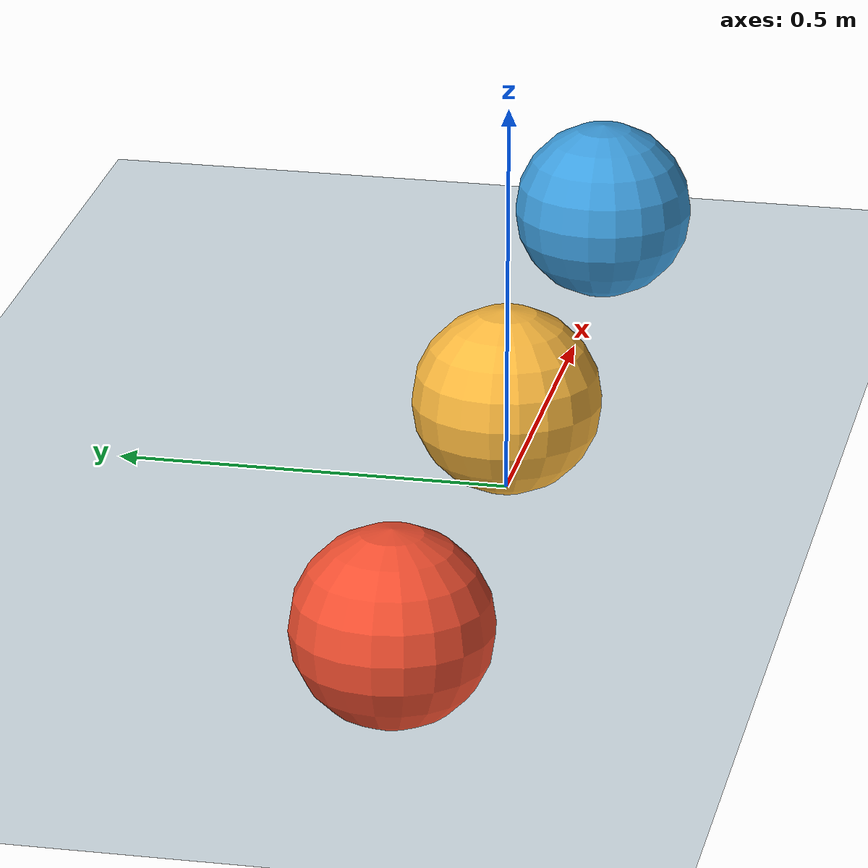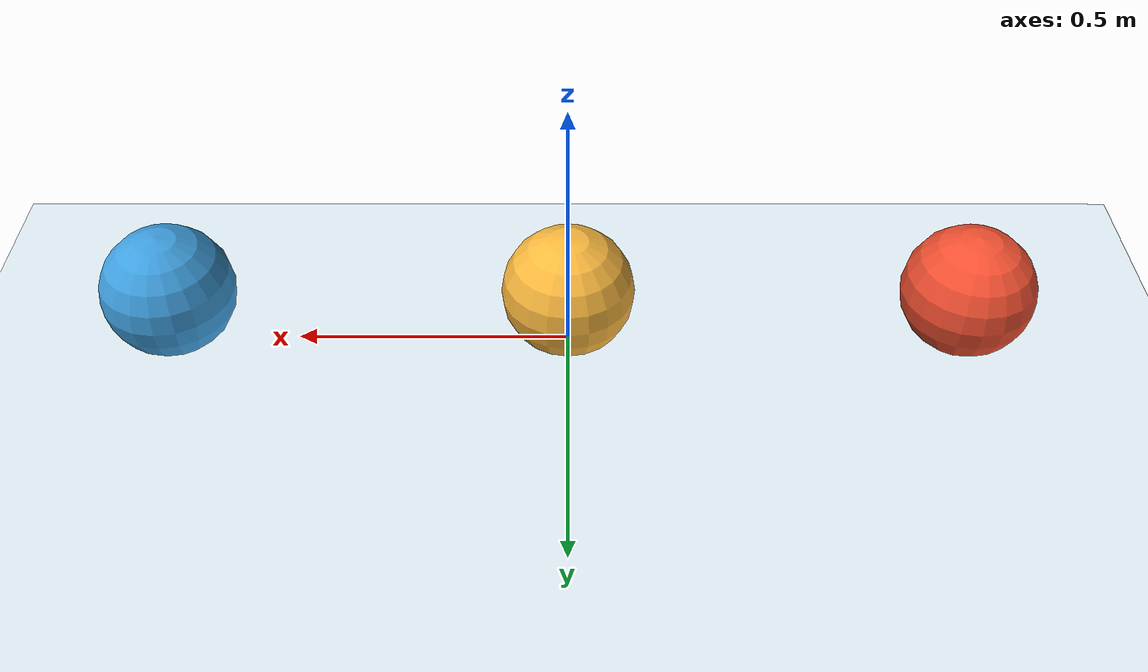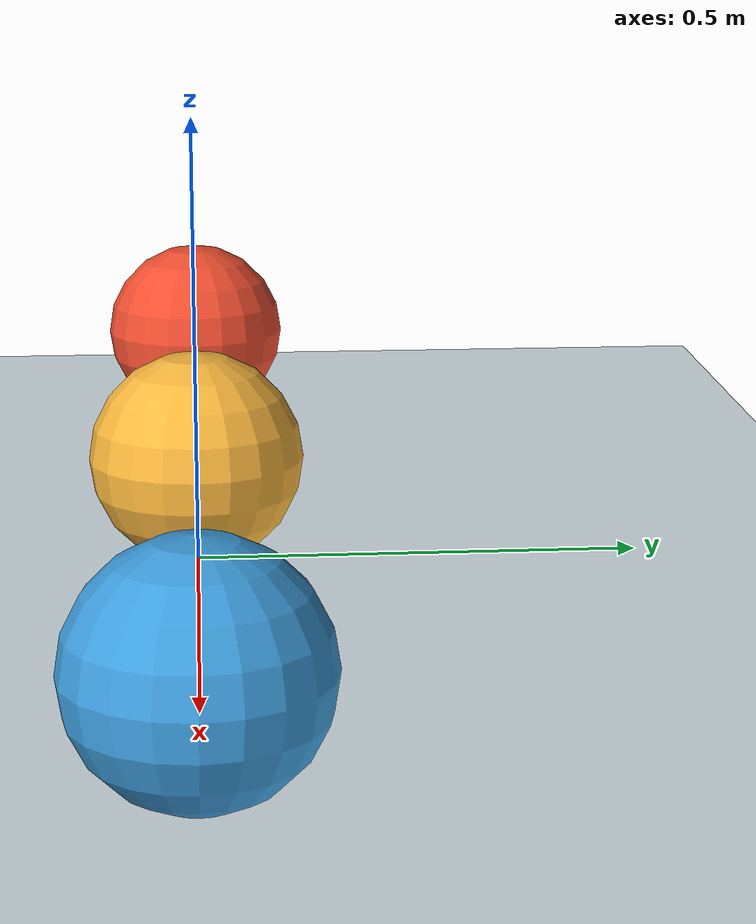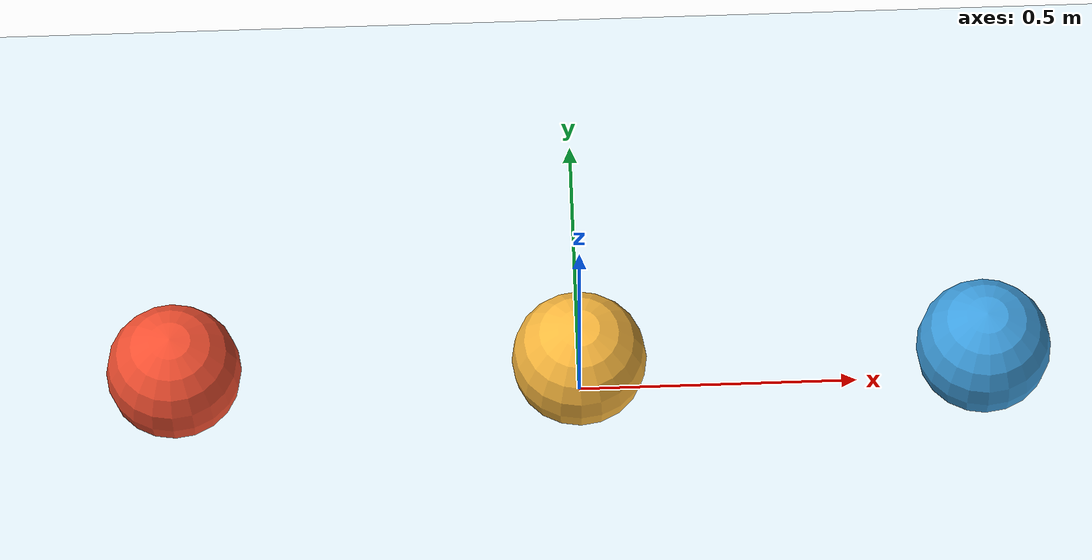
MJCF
<mujoco model="friction laboratory">
  <compiler angle="radian" inertiafromgeom="true"/>
  <option timestep="0.002" gravity="0 0 -9.81" integrator="Euler"
    cone="pyramidal" iterations="100" tolerance="1e-10"/>
  <asset>
    <texture name="laboratory_checker" type="2d" builtin="checker"
      width="512" height="512" rgb1="0.10 0.19 0.25" rgb2="0.28 0.41 0.47"/>
    <material name="laboratory_floor" texture="laboratory_checker"
      texrepeat="12 12" texuniform="true" reflectance="0.04"/>
  </asset>
  <default>
    <geom condim="3" solref="0.02 1" solimp="0.9 0.95 0.001 0.5 2"
      friction="0.4 0.01 0.01"/>
    <joint damping="0" armature="0"/>
  </default>
  <worldbody>
    <light name="key" directional="true" pos="0 0 4" dir="-0.15 0 -1"
      diffuse="1 1 1" specular="0.3 0.3 0.3"/>
    <geom name="laboratory_floor" type="plane" size="20 20 0.1"
      material="laboratory_floor" contype="1" conaffinity="2"
      rgba="0.88 0.93 0.96 1" friction="0.01 0.01 0.01"/>
    <body name="low_friction" pos="-0.72 0 0.118">
      <freejoint/>
      <geom name="low_friction_ball" type="sphere" size="0.12" mass="0.3"
        friction="0.01 0.01 0.01" contype="2" conaffinity="3"
        rgba="0.95 0.31 0.19 1"/>
    </body>
    <body name="medium_friction" pos="0 0 0.118">
      <freejoint/>
      <geom name="medium_friction_ball" type="sphere" size="0.12" mass="0.3"
        friction="0.12 0.01 0.01" contype="2" conaffinity="3"
        rgba="0.98 0.72 0.24 1"/>
    </body>
    <body name="high_friction" pos="0.72 0 0.118">
      <freejoint/>
      <geom name="high_friction_ball" type="sphere" size="0.12" mass="0.3"
        friction="1.0 0.01 0.01" contype="2" conaffinity="3"
        rgba="0.24 0.62 0.87 1"/>
    </body>
  </worldbody>
</mujoco>
